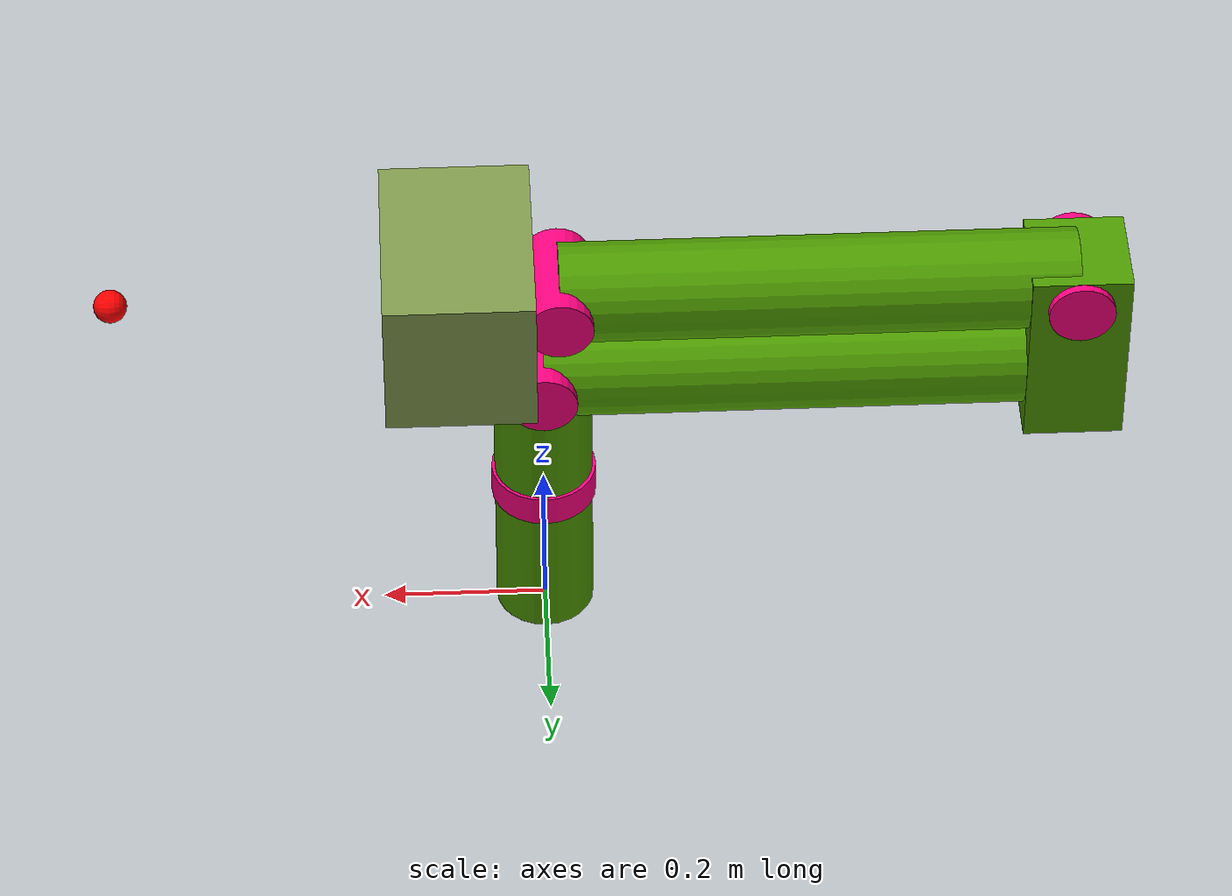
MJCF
<mujoco model="Open Manipulator">
    <compiler inertiafromgeom="true" angle="degree"/>
    <option timestep="0.005" gravity="0 0 -9.81" cone="elliptic" jacobian="auto" solver="Newton" impratio="1.0"/>
    <!--  collision="predefined"  -->
    <option>
        <flag gravity="enable" override="enable"/>
    </option>
    <default>
        <geom contype="1" conaffinity="1" condim="3"/>
        <joint limited="false" damping="0.5" armature="0.1" stiffness="0" frictionloss="0.1"/>
        <motor gear="1 0 0 0 0 0" ctrllimited="false" ctrlrange="-100 100"/>
    </default>
    <worldbody>
        <!--  Link1  -->
        <body name="link1" pos="0 0 0" euler="0 0 0">
            <joint name="L1" pos="0 0 0" type="hinge" axis="0 0 1" limited="false"/>
            <geom type="cylinder" pos="0 0 0.19175" size="0.06 0.19175" rgba="0.3 0.6 0 1"/>
            <geom type="cylinder" pos="0 0 0.2" euler="0 0 0" size="0.064 0.02" rgba="1 0 0.5 1"/>
            <!--  Link2  -->
            <body name="link2" pos="0 0 0.3825" euler="90 0 90">
                <joint name="L2" pos="0 0 0" type="hinge" axis="0 0 1" limited="true" range="-150 150"/>
                <geom type="cylinder" pos="0 0.32 0" euler="-90 0 0" size="0.06 0.32" rgba="0.3 0.6 0 1"/>
                <geom type="cylinder" pos="0 0 0" euler="0 0 0" size="0.04 0.07" rgba="1 0 0.5 1"/>
                <geom type="box" pos="0.04 0.64 0" euler="0 0 0" size="0.12 0.06 0.06" rgba="0.3 0.6 0 1"/>
                <!--  Link3 -->
                <body name="link3" pos="0.12 0.64 0" euler="0 0 -180">
                    <joint name="L3" pos="0 0 0" type="hinge" axis="0 0 1" limited="true" range="-200 100"/>
                    <geom type="cylinder" pos="0 0.31 0" euler="-90 0 0" size="0.06 0.31" rgba="0.3 0.6 0 1"/>
                    <geom type="cylinder" pos="0 0 0" euler="0 0 0" size="0.04 0.07" rgba="1 0 0.5 1"/>
                    <!--  Link4 -->
                    <body name="link4" pos="0 0.62 0" euler="0 0 0">
                        <joint name="L4" pos="0 0 0" type="hinge" axis="0 0 1" limited="true" range="-160 160"/>
                        <geom type="box" pos="0 0.12 0" euler="0 0 0" size="0.09 0.09 0.13" rgba="0.5 0.6 0.3 1"/>
                        <geom type="cylinder" pos="0 0 0" euler="0 0 0" size="0.04 0.07" rgba="1 0 0.5 1"/>
                        <!--  Fingers -->
                        <body name="fingers" pos="0 0.533 0" euler="-90 0 0">
                            <site name="EE" type="sphere" pos="0 0 0" size="0.02" rgba="1 0 0 1"/>
                        </body>
                    </body>
                </body>
            </body>
        </body>
    </worldbody>
    <actuator>
        <motor joint="L1" name="link1" gear="1" ctrllimited="true" ctrlrange="-1193 1193"/>
        <motor joint="L2" name="link2" gear="1" ctrllimited="true" ctrlrange="-1193 1193"/>
        <motor joint="L3" name="link3" gear="1" ctrllimited="true" ctrlrange="-1193 1193"/>
        <motor joint="L4" name="link4" gear="1" ctrllimited="true" ctrlrange="-1193 1193"/>
    </actuator>
</mujoco>
